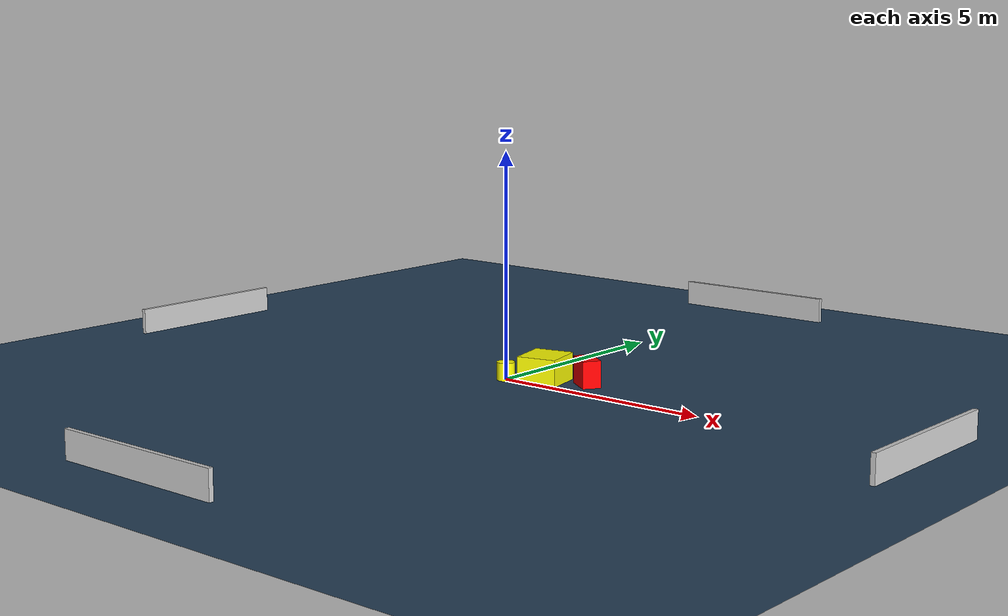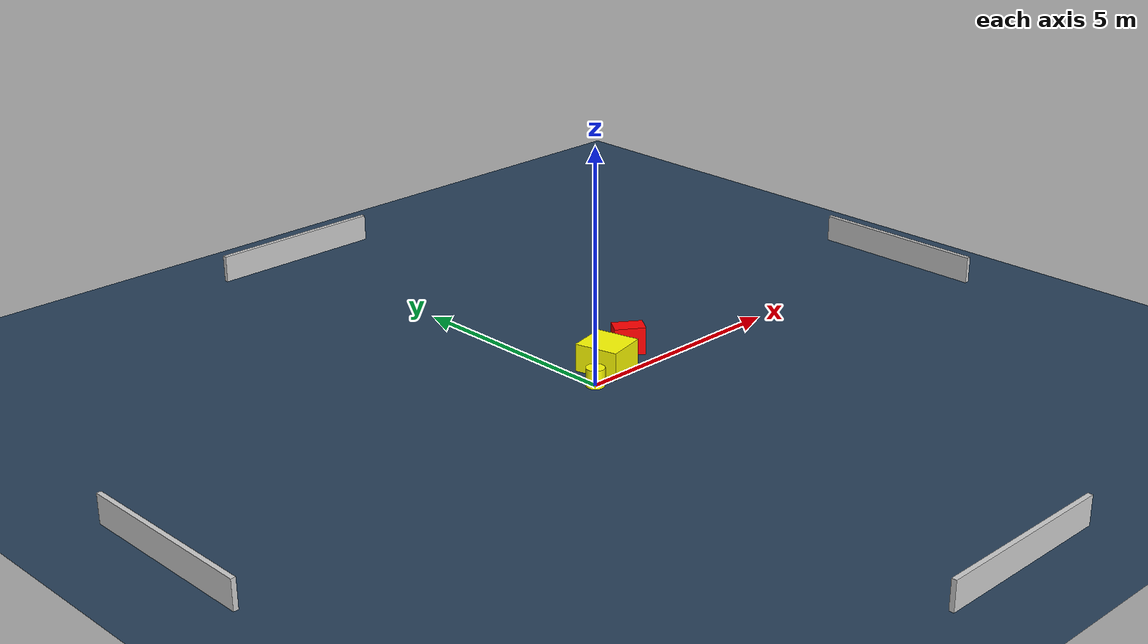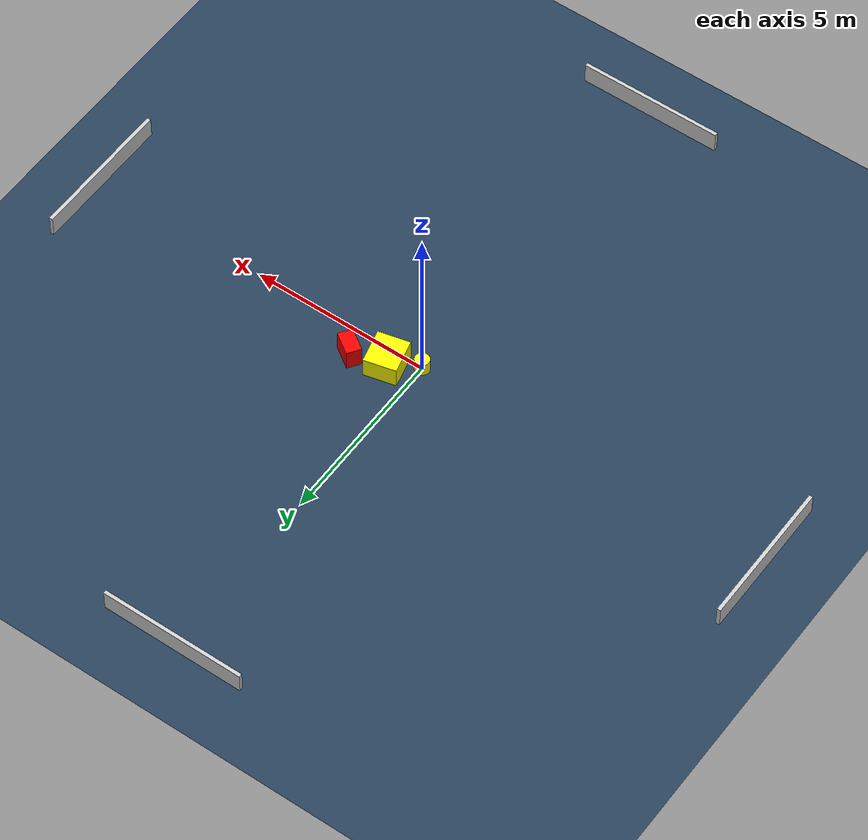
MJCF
<?xml version="1.0" ?>
<mujoco model="generated_environment">
  <option timestep="0.01" integrator="RK4" cone="elliptic"/>
  <default>
    <geom density="1"/>
  </default>
  <asset>
    <texture builtin="gradient" height="3072" name="skybox" rgb1="0.3 0.5 0.7" rgb2="0 0 0" type="skybox" width="512"/>
    <texture builtin="checker" height="300" name="groundplane" rgb1="0.2 0.3 0.4" rgb2="0.1 0.2 0.3" type="2d" width="300"/>
    <material name="groundplane" reflectance="0.2" texrepeat="5 5" texture="groundplane"/>
  </asset>
  <worldbody>
    <light dir="0 0 -1" directional="true" pos="0 0 1.5"/>
    <geom condim="3" friction="0.5 0.005 0.001" material="groundplane" name="floor" pos="0 0 0" size="0 0 0.05" type="plane"/>
    <body name="walls">
      <geom name="wall_1" condim="4" pos="-10.0 0.0 0.3" rgba="0.800000011920929 0.800000011920929 0.800000011920929 1.0" size="0.05 2.0 0.3" type="box"/>
      <geom name="wall_2" condim="4" pos="10.0 0.0 0.3" rgba="0.800000011920929 0.800000011920929 0.800000011920929 1.0" size="0.05 2.0 0.3" type="box"/>
      <geom name="wall_3" condim="4" pos="0.0 -10.0 0.3" rgba="0.800000011920929 0.800000011920929 0.800000011920929 1.0" size="2.0 0.05 0.3" type="box"/>
      <geom name="wall_4" condim="4" pos="0.0 10.0 0.3" rgba="0.800000011920929 0.800000011920929 0.800000011920929 1.0" size="2.0 0.05 0.3" type="box"/>
    </body>
    <body name="robot">
      <joint name="joint_x" type="slide" pos="0 0 0" axis="1 0 0"/>
      <joint name="joint_y" type="slide" pos="0 0 0" axis="0 1 0"/>
      <geom name="robot" type="cylinder" pos="0.0 0.0 0.2" size="0.2 0.2 0.0" mass="5.0" friction="1.0 0.005 0.0001" condim="4" rgba="1.0 1.0 0.0 1.0"/>
    </body>
    <body name="obstacle_1_movable">
      <geom name="obstacle_1_movable" condim="4" pos="0.758412182342152 0.42704882119425497 0.3" euler="0 0 13.54369930122692" friction="0.0 0.005 0.001" rgba="1.0 1.0 0.0 1.0" size="0.44453449382248666 0.4756443767352033 0.3" type="box" mass="0.1"/>
      <joint type="free"/>
    </body>
    <body name="obstacle_2_static">
      <geom name="obstacle_2_static" condim="4" pos="1.6820042179902321 0.7182364524416265 0.3" euler="0 0 55.729918406656466" friction="0.0 0.005 0.001" rgba="1.0 0.0 0.0 1.0" size="0.20510751884403203 0.3325251910202931 0.3" type="box"/>
    </body>
  </worldbody>
  <actuator>
    <motor name="actuator_x" joint="joint_x" gear="1" ctrlrange="-1 1"/>
    <motor name="actuator_y" joint="joint_y" gear="1" ctrlrange="-1 1"/>
  </actuator>
</mujoco>
